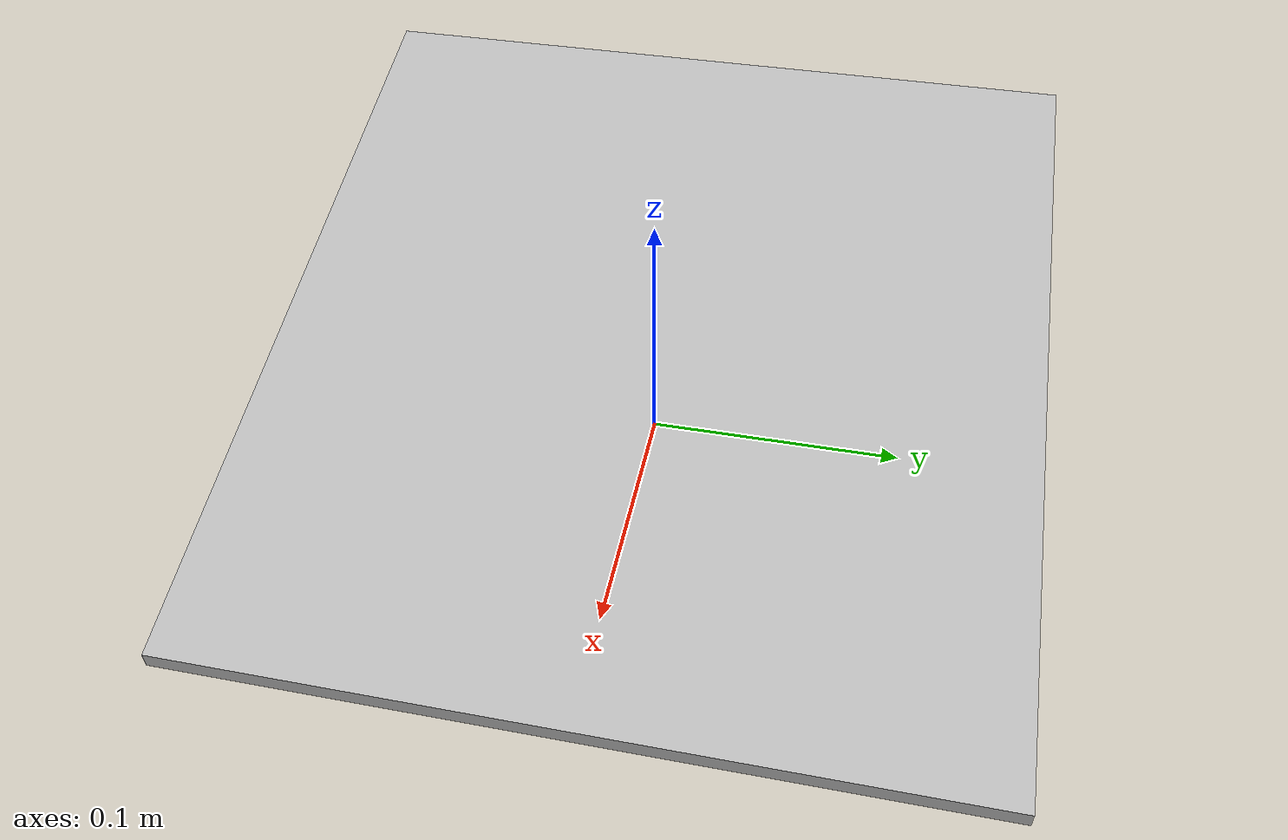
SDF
<?xml version="1.0" ?>
<sdf version="1.4">
  <model name="Y_positive_15_lifted_size_30">
    <link name="link">
      <pose>0 0 0 0 0 0</pose>
      <collision name="collision">
        <geometry>
          <mesh>
            <uri>model://Y_positive_15_lifted_size_30/meshes/15_degree_slope_lifted_size_30.stl</uri>
            <scale>0.00999 0.00999 0.00999</scale>
          </mesh>
        </geometry>
      </collision>
      <visual name="visual">
        <geometry>
          <mesh>
            <uri>model://Y_positive_15_lifted_size_30/meshes/15_degree_slope_lifted_size_30.stl</uri>
            <scale>0.00999 0.00999 0.00999</scale>
          </mesh>
        </geometry>
      </visual>
    </link>
  </model>
</sdf>
